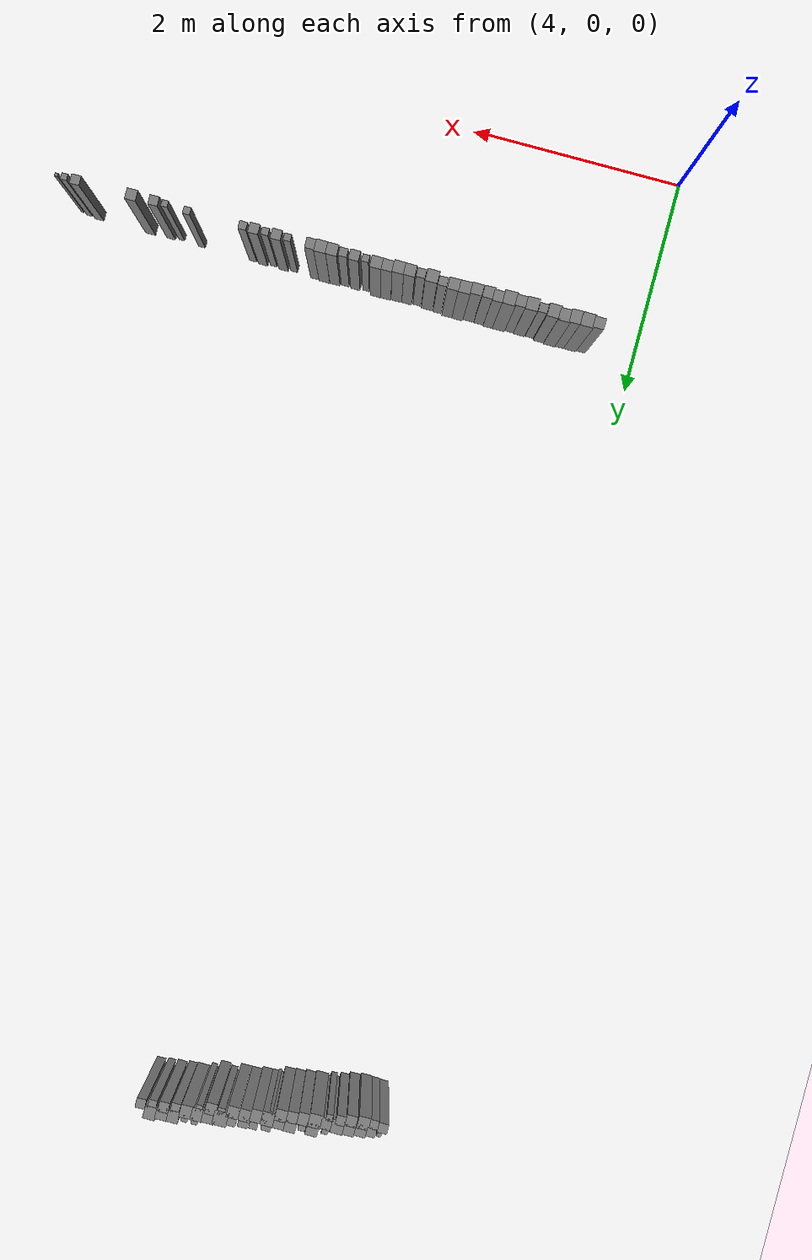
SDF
<sdf version="1.6">
 <world name="default">
  <model name="group_0">
   <pose>4.52 8.91 0.5 0 0 0</pose>
   <static>true</static>
   <link name="link">
    <collision name="collision">
     <geometry><box><size>0.08740686806820892 0.08740686806820892 1</size></box></geometry>
    </collision>
    <visual name="visual">
     <geometry><box><size>0.08740686806820892 0.08740686806820892 1</size></box></geometry>
     <material><ambient>0.5 0.5 0.5 1</ambient></material>
    </visual>
   </link>
  </model>
  <model name="group_1">
   <pose>4.54 8.97 0.5 0 0 0</pose>
   <static>true</static>
   <link name="link">
    <collision name="collision">
     <geometry><box><size>0.039435040914736375 0.039435040914736375 1</size></box></geometry>
    </collision>
    <visual name="visual">
     <geometry><box><size>0.039435040914736375 0.039435040914736375 1</size></box></geometry>
     <material><ambient>0.5 0.5 0.5 1</ambient></material>
    </visual>
   </link>
  </model>
  <model name="group_2">
   <pose>4.60 8.90 0.5 0 0 0</pose>
   <static>true</static>
   <link name="link">
    <collision name="collision">
     <geometry><box><size>0.07960863723841033 0.07960863723841033 1</size></box></geometry>
    </collision>
    <visual name="visual">
     <geometry><box><size>0.07960863723841033 0.07960863723841033 1</size></box></geometry>
     <material><ambient>0.5 0.5 0.5 1</ambient></material>
    </visual>
   </link>
  </model>
  <model name="group_3">
   <pose>4.61 8.97 0.5 0 0 0</pose>
   <static>true</static>
   <link name="link">
    <collision name="collision">
     <geometry><box><size>0.08105785199989857 0.08105785199989857 1</size></box></geometry>
    </collision>
    <visual name="visual">
     <geometry><box><size>0.08105785199989857 0.08105785199989857 1</size></box></geometry>
     <material><ambient>0.5 0.5 0.5 1</ambient></material>
    </visual>
   </link>
  </model>
  <model name="group_4">
   <pose>4.69 8.91 0.5 0 0 0</pose>
   <static>true</static>
   <link name="link">
    <collision name="collision">
     <geometry><box><size>0.1078212749080291 0.1078212749080291 1</size></box></geometry>
    </collision>
    <visual name="visual">
     <geometry><box><size>0.1078212749080291 0.1078212749080291 1</size></box></geometry>
     <material><ambient>0.5 0.5 0.5 1</ambient></material>
    </visual>
   </link>
  </model>
  <model name="group_5">
   <pose>4.70 8.98 0.5 0 0 0</pose>
   <static>true</static>
   <link name="link">
    <collision name="collision">
     <geometry><box><size>0.10297681291020339 0.10297681291020339 1</size></box></geometry>
    </collision>
    <visual name="visual">
     <geometry><box><size>0.10297681291020339 0.10297681291020339 1</size></box></geometry>
     <material><ambient>0.5 0.5 0.5 1</ambient></material>
    </visual>
   </link>
  </model>
  <model name="group_6">
   <pose>4.80 8.92 0.5 0 0 0</pose>
   <static>true</static>
   <link name="link">
    <collision name="collision">
     <geometry><box><size>0.0965730022409278 0.0965730022409278 1</size></box></geometry>
    </collision>
    <visual name="visual">
     <geometry><box><size>0.0965730022409278 0.0965730022409278 1</size></box></geometry>
     <material><ambient>0.5 0.5 0.5 1</ambient></material>
    </visual>
   </link>
  </model>
  <model name="group_7">
   <pose>4.80 9.00 0.5 0 0 0</pose>
   <static>true</static>
   <link name="link">
    <collision name="collision">
     <geometry><box><size>0.0991922640656726 0.0991922640656726 1</size></box></geometry>
    </collision>
    <visual name="visual">
     <geometry><box><size>0.0991922640656726 0.0991922640656726 1</size></box></geometry>
     <material><ambient>0.5 0.5 0.5 1</ambient></material>
    </visual>
   </link>
  </model>
  <model name="group_8">
   <pose>4.89 8.94 0.5 0 0 0</pose>
   <static>true</static>
   <link name="link">
    <collision name="collision">
     <geometry><box><size>0.08442075767464065 0.08442075767464065 1</size></box></geometry>
    </collision>
    <visual name="visual">
     <geometry><box><size>0.08442075767464065 0.08442075767464065 1</size></box></geometry>
     <material><ambient>0.5 0.5 0.5 1</ambient></material>
    </visual>
   </link>
  </model>
  <model name="group_9">
   <pose>4.90 9.00 0.5 0 0 0</pose>
   <static>true</static>
   <link name="link">
    <collision name="collision">
     <geometry><box><size>0.11941295585761501 0.11941295585761501 1</size></box></geometry>
    </collision>
    <visual name="visual">
     <geometry><box><size>0.11941295585761501 0.11941295585761501 1</size></box></geometry>
     <material><ambient>0.5 0.5 0.5 1</ambient></material>
    </visual>
   </link>
  </model>
  <model name="group_10">
   <pose>4.95 9.06 0.5 0 0 0</pose>
   <static>true</static>
   <link name="link">
    <collision name="collision"><geometry><box><size>0.0 0.0 1</size></box></geometry></collision>
    <visual name="visual">
     <geometry><box><size>0.0 0.0 1</size></box></geometry>
     <material><ambient>0.5 0.5 0.5 1</ambient></material>
    </visual>
   </link>
  </model>
  <model name="group_11">
   <pose>4.99 8.94 0.5 0 0 0</pose>
   <static>true</static>
   <link name="link">
    <collision name="collision">
     <geometry><box><size>0.0562805051164271 0.0562805051164271 1</size></box></geometry>
    </collision>
    <visual name="visual">
     <geometry><box><size>0.0562805051164271 0.0562805051164271 1</size></box></geometry>
     <material><ambient>0.5 0.5 0.5 1</ambient></material>
    </visual>
   </link>
  </model>
  <model name="group_12">
   <pose>5.00 9.00 0.5 0 0 0</pose>
   <static>true</static>
   <link name="link">
    <collision name="collision">
     <geometry><box><size>0.09919226406566871 0.09919226406566871 1</size></box></geometry>
    </collision>
    <visual name="visual">
     <geometry><box><size>0.09919226406566871 0.09919226406566871 1</size></box></geometry>
     <material><ambient>0.5 0.5 0.5 1</ambient></material>
    </visual>
   </link>
  </model>
  <model name="group_13">
   <pose>5.00 9.06 0.5 0 0 0</pose>
   <static>true</static>
   <link name="link">
    <collision name="collision">
     <geometry><box><size>0.0562805051164271 0.0562805051164271 1</size></box></geometry>
    </collision>
    <visual name="visual">
     <geometry><box><size>0.0562805051164271 0.0562805051164271 1</size></box></geometry>
     <material><ambient>0.5 0.5 0.5 1</ambient></material>
    </visual>
   </link>
  </model>
  <model name="group_15">
   <pose>4.50 1.70 0.5 0 0 0</pose>
   <static>true</static>
   <link name="link">
    <collision name="collision">
     <geometry><box><size>0.09919226406566767 0.09919226406566767 1</size></box></geometry>
    </collision>
    <visual name="visual">
     <geometry><box><size>0.09919226406566767 0.09919226406566767 1</size></box></geometry>
     <material><ambient>0.5 0.5 0.5 1</ambient></material>
    </visual>
   </link>
  </model>
  <model name="group_16">
   <pose>5.10 9.00 0.5 0 0 0</pose>
   <static>true</static>
   <link name="link">
    <collision name="collision">
     <geometry><box><size>0.11941295585761501 0.11941295585761501 1</size></box></geometry>
    </collision>
    <visual name="visual">
     <geometry><box><size>0.11941295585761501 0.11941295585761501 1</size></box></geometry>
     <material><ambient>0.5 0.5 0.5 1</ambient></material>
    </visual>
   </link>
  </model>
  <model name="group_17">
   <pose>5.11 9.08 0.5 0 0 0</pose>
   <static>true</static>
   <link name="link">
    <collision name="collision">
     <geometry><box><size>0.10632897044420285 0.10632897044420285 1</size></box></geometry>
    </collision>
    <visual name="visual">
     <geometry><box><size>0.10632897044420285 0.10632897044420285 1</size></box></geometry>
     <material><ambient>0.5 0.5 0.5 1</ambient></material>
    </visual>
   </link>
  </model>
  <model name="group_18">
   <pose>4.60 1.70 0.5 0 0 0</pose>
   <static>true</static>
   <link name="link">
    <collision name="collision">
     <geometry><box><size>0.11941295585761413 0.11941295585761413 1</size></box></geometry>
    </collision>
    <visual name="visual">
     <geometry><box><size>0.11941295585761413 0.11941295585761413 1</size></box></geometry>
     <material><ambient>0.5 0.5 0.5 1</ambient></material>
    </visual>
   </link>
  </model>
  <model name="group_20">
   <pose>5.20 9.01 0.5 0 0 0</pose>
   <static>true</static>
   <link name="link">
    <collision name="collision">
     <geometry><box><size>0.10871288083971324 0.10871288083971324 1</size></box></geometry>
    </collision>
    <visual name="visual">
     <geometry><box><size>0.10871288083971324 0.10871288083971324 1</size></box></geometry>
     <material><ambient>0.5 0.5 0.5 1</ambient></material>
    </visual>
   </link>
  </model>
  <model name="group_21">
   <pose>5.20 9.08 0.5 0 0 0</pose>
   <static>true</static>
   <link name="link">
    <collision name="collision">
     <geometry><box><size>0.06413786030771819 0.06413786030771819 1</size></box></geometry>
    </collision>
    <visual name="visual">
     <geometry><box><size>0.06413786030771819 0.06413786030771819 1</size></box></geometry>
     <material><ambient>0.5 0.5 0.5 1</ambient></material>
    </visual>
   </link>
  </model>
  <model name="group_23">
   <pose>4.70 1.70 0.5 0 0 0</pose>
   <static>true</static>
   <link name="link">
    <collision name="collision">
     <geometry><box><size>0.11884310777185463 0.11884310777185463 1</size></box></geometry>
    </collision>
    <visual name="visual">
     <geometry><box><size>0.11884310777185463 0.11884310777185463 1</size></box></geometry>
     <material><ambient>0.5 0.5 0.5 1</ambient></material>
    </visual>
   </link>
  </model>
  <model name="group_24">
   <pose>5.30 9.02 0.5 0 0 0</pose>
   <static>true</static>
   <link name="link">
    <collision name="collision">
     <geometry><box><size>0.0983825120287442 0.0983825120287442 1</size></box></geometry>
    </collision>
    <visual name="visual">
     <geometry><box><size>0.0983825120287442 0.0983825120287442 1</size></box></geometry>
     <material><ambient>0.5 0.5 0.5 1</ambient></material>
    </visual>
   </link>
  </model>
  <model name="group_25">
   <pose>5.30 9.10 0.5 0 0 0</pose>
   <static>true</static>
   <link name="link">
    <collision name="collision">
     <geometry><box><size>0.10297681291020155 0.10297681291020155 1</size></box></geometry>
    </collision>
    <visual name="visual">
     <geometry><box><size>0.10297681291020155 0.10297681291020155 1</size></box></geometry>
     <material><ambient>0.5 0.5 0.5 1</ambient></material>
    </visual>
   </link>
  </model>
  <model name="group_26">
   <pose>4.80 1.71 0.5 0 0 0</pose>
   <static>true</static>
   <link name="link">
    <collision name="collision">
     <geometry><box><size>0.11145209213377275 0.11145209213377275 1</size></box></geometry>
    </collision>
    <visual name="visual">
     <geometry><box><size>0.11145209213377275 0.11145209213377275 1</size></box></geometry>
     <material><ambient>0.5 0.5 0.5 1</ambient></material>
    </visual>
   </link>
  </model>
  <model name="group_28">
   <pose>5.40 9.03 0.5 0 0 0</pose>
   <static>true</static>
   <link name="link">
    <collision name="collision">
     <geometry><box><size>0.10273569860668266 0.10273569860668266 1</size></box></geometry>
    </collision>
    <visual name="visual">
     <geometry><box><size>0.10273569860668266 0.10273569860668266 1</size></box></geometry>
     <material><ambient>0.5 0.5 0.5 1</ambient></material>
    </visual>
   </link>
  </model>
  <model name="group_29">
   <pose>5.40 9.10 0.5 0 0 0</pose>
   <static>true</static>
   <link name="link">
    <collision name="collision">
     <geometry><box><size>0.099244404533285 0.099244404533285 1</size></box></geometry>
    </collision>
    <visual name="visual">
     <geometry><box><size>0.099244404533285 0.099244404533285 1</size></box></geometry>
     <material><ambient>0.5 0.5 0.5 1</ambient></material>
    </visual>
   </link>
  </model>
  <model name="group_30">
   <pose>5.43 9.15 0.5 0 0 0</pose>
   <static>true</static>
   <link name="link">
    <collision name="collision"><geometry><box><size>0.0 0.0 1</size></box></geometry></collision>
    <visual name="visual">
     <geometry><box><size>0.0 0.0 1</size></box></geometry>
     <material><ambient>0.5 0.5 0.5 1</ambient></material>
    </visual>
   </link>
  </model>
  <model name="group_32">
   <pose>4.90 1.70 0.5 0 0 0</pose>
   <static>true</static>
   <link name="link">
    <collision name="collision">
     <geometry><box><size>0.11493900367022299 0.11493900367022299 1</size></box></geometry>
    </collision>
    <visual name="visual">
     <geometry><box><size>0.11493900367022299 0.11493900367022299 1</size></box></geometry>
     <material><ambient>0.5 0.5 0.5 1</ambient></material>
    </visual>
   </link>
  </model>
  <model name="group_33">
   <pose>5.50 9.09 0.5 0 0 0</pose>
   <static>true</static>
   <link name="link">
    <collision name="collision">
     <geometry><box><size>0.11941295585761268 0.11941295585761268 1</size></box></geometry>
    </collision>
    <visual name="visual">
     <geometry><box><size>0.11941295585761268 0.11941295585761268 1</size></box></geometry>
     <material><ambient>0.5 0.5 0.5 1</ambient></material>
    </visual>
   </link>
  </model>
  <model name="group_34">
   <pose>5.50 9.15 0.5 0 0 0</pose>
   <static>true</static>
   <link name="link">
    <collision name="collision">
     <geometry><box><size>0.08442075767464065 0.08442075767464065 1</size></box></geometry>
    </collision>
    <visual name="visual">
     <geometry><box><size>0.08442075767464065 0.08442075767464065 1</size></box></geometry>
     <material><ambient>0.5 0.5 0.5 1</ambient></material>
    </visual>
   </link>
  </model>
  <model name="group_35">
   <pose>5.49 9.03 0.5 0 0 0</pose>
   <static>true</static>
   <link name="link">
    <collision name="collision">
     <geometry><box><size>0.02814025255821355 0.02814025255821355 1</size></box></geometry>
    </collision>
    <visual name="visual">
     <geometry><box><size>0.02814025255821355 0.02814025255821355 1</size></box></geometry>
     <material><ambient>0.5 0.5 0.5 1</ambient></material>
    </visual>
   </link>
  </model>
  <model name="group_37">
   <pose>5.00 1.70 0.5 0 0 0</pose>
   <static>true</static>
   <link name="link">
    <collision name="collision">
     <geometry><box><size>0.07960863723840993 0.07960863723840993 1</size></box></geometry>
    </collision>
    <visual name="visual">
     <geometry><box><size>0.07960863723840993 0.07960863723840993 1</size></box></geometry>
     <material><ambient>0.5 0.5 0.5 1</ambient></material>
    </visual>
   </link>
  </model>
  <model name="group_38">
   <pose>5.60 9.09 0.5 0 0 0</pose>
   <static>true</static>
   <link name="link">
    <collision name="collision">
     <geometry><box><size>0.11218382099302728 0.11218382099302728 1</size></box></geometry>
    </collision>
    <visual name="visual">
     <geometry><box><size>0.11218382099302728 0.11218382099302728 1</size></box></geometry>
     <material><ambient>0.5 0.5 0.5 1</ambient></material>
    </visual>
   </link>
  </model>
  <model name="group_39">
   <pose>5.61 9.17 0.5 0 0 0</pose>
   <static>true</static>
   <link name="link">
    <collision name="collision">
     <geometry><box><size>0.07256090009164153 0.07256090009164153 1</size></box></geometry>
    </collision>
    <visual name="visual">
     <geometry><box><size>0.07256090009164153 0.07256090009164153 1</size></box></geometry>
     <material><ambient>0.5 0.5 0.5 1</ambient></material>
    </visual>
   </link>
  </model>
  <model name="group_41">
   <pose>5.10 1.69 0.5 0 0 0</pose>
   <static>true</static>
   <link name="link">
    <collision name="collision">
     <geometry><box><size>0.11145209213377198 0.11145209213377198 1</size></box></geometry>
    </collision>
    <visual name="visual">
     <geometry><box><size>0.11145209213377198 0.11145209213377198 1</size></box></geometry>
     <material><ambient>0.5 0.5 0.5 1</ambient></material>
    </visual>
   </link>
  </model>
  <model name="group_42">
   <pose>5.70 9.11 0.5 0 0 0</pose>
   <static>true</static>
   <link name="link">
    <collision name="collision">
     <geometry><box><size>0.10560575864695261 0.10560575864695261 1</size></box></geometry>
    </collision>
    <visual name="visual">
     <geometry><box><size>0.10560575864695261 0.10560575864695261 1</size></box></geometry>
     <material><ambient>0.5 0.5 0.5 1</ambient></material>
    </visual>
   </link>
  </model>
  <model name="group_43">
   <pose>5.70 9.17 0.5 0 0 0</pose>
   <static>true</static>
   <link name="link">
    <collision name="collision">
     <geometry><box><size>0.09070112511455292 0.09070112511455292 1</size></box></geometry>
    </collision>
    <visual name="visual">
     <geometry><box><size>0.09070112511455292 0.09070112511455292 1</size></box></geometry>
     <material><ambient>0.5 0.5 0.5 1</ambient></material>
    </visual>
   </link>
  </model>
  <model name="group_45">
   <pose>5.20 1.69 0.5 0 0 0</pose>
   <static>true</static>
   <link name="link">
    <collision name="collision">
     <geometry><box><size>0.09919226406566733 0.09919226406566733 1</size></box></geometry>
    </collision>
    <visual name="visual">
     <geometry><box><size>0.09919226406566733 0.09919226406566733 1</size></box></geometry>
     <material><ambient>0.5 0.5 0.5 1</ambient></material>
    </visual>
   </link>
  </model>
  <model name="group_46">
   <pose>5.81 9.11 0.5 0 0 0</pose>
   <static>true</static>
   <link name="link">
    <collision name="collision">
     <geometry><box><size>0.10297681291020186 0.10297681291020186 1</size></box></geometry>
    </collision>
    <visual name="visual">
     <geometry><box><size>0.10297681291020186 0.10297681291020186 1</size></box></geometry>
     <material><ambient>0.5 0.5 0.5 1</ambient></material>
    </visual>
   </link>
  </model>
  <model name="group_47">
   <pose>5.80 9.19 0.5 0 0 0</pose>
   <static>true</static>
   <link name="link">
    <collision name="collision">
     <geometry><box><size>0.07960863723840801 0.07960863723840801 1</size></box></geometry>
    </collision>
    <visual name="visual">
     <geometry><box><size>0.07960863723840801 0.07960863723840801 1</size></box></geometry>
     <material><ambient>0.5 0.5 0.5 1</ambient></material>
    </visual>
   </link>
  </model>
  <model name="group_49">
   <pose>5.30 1.69 0.5 0 0 0</pose>
   <static>true</static>
   <link name="link">
    <collision name="collision">
     <geometry><box><size>0.11941295585761355 0.11941295585761355 1</size></box></geometry>
    </collision>
    <visual name="visual">
     <geometry><box><size>0.11941295585761355 0.11941295585761355 1</size></box></geometry>
     <material><ambient>0.5 0.5 0.5 1</ambient></material>
    </visual>
   </link>
  </model>
  <model name="group_50">
   <pose>5.90 9.19 0.5 0 0 0</pose>
   <static>true</static>
   <link name="link">
    <collision name="collision">
     <geometry><box><size>0.12787992062458983 0.12787992062458983 1</size></box></geometry>
    </collision>
    <visual name="visual">
     <geometry><box><size>0.12787992062458983 0.12787992062458983 1</size></box></geometry>
     <material><ambient>0.5 0.5 0.5 1</ambient></material>
    </visual>
   </link>
  </model>
  <model name="group_51">
   <pose>5.91 9.13 0.5 0 0 0</pose>
   <static>true</static>
   <link name="link">
    <collision name="collision">
     <geometry><box><size>0.06413786030771819 0.06413786030771819 1</size></box></geometry>
    </collision>
    <visual name="visual">
     <geometry><box><size>0.06413786030771819 0.06413786030771819 1</size></box></geometry>
     <material><ambient>0.5 0.5 0.5 1</ambient></material>
    </visual>
   </link>
  </model>
  <model name="group_53">
   <pose>5.40 1.70 0.5 0 0 0</pose>
   <static>true</static>
   <link name="link">
    <collision name="collision">
     <geometry><box><size>0.09919226406566879 0.09919226406566879 1</size></box></geometry>
    </collision>
    <visual name="visual">
     <geometry><box><size>0.09919226406566879 0.09919226406566879 1</size></box></geometry>
     <material><ambient>0.5 0.5 0.5 1</ambient></material>
    </visual>
   </link>
  </model>
  <model name="group_54">
   <pose>6.00 9.13 0.5 0 0 0</pose>
   <static>true</static>
   <link name="link">
    <collision name="collision">
     <geometry><box><size>0.10114093471775669 0.10114093471775669 1</size></box></geometry>
    </collision>
    <visual name="visual">
     <geometry><box><size>0.10114093471775669 0.10114093471775669 1</size></box></geometry>
     <material><ambient>0.5 0.5 0.5 1</ambient></material>
    </visual>
   </link>
  </model>
  <model name="group_55">
   <pose>6.00 9.20 0.5 0 0 0</pose>
   <static>true</static>
   <link name="link">
    <collision name="collision">
     <geometry><box><size>0.11884310777185265 0.11884310777185265 1</size></box></geometry>
    </collision>
    <visual name="visual">
     <geometry><box><size>0.11884310777185265 0.11884310777185265 1</size></box></geometry>
     <material><ambient>0.5 0.5 0.5 1</ambient></material>
    </visual>
   </link>
  </model>
  <model name="group_56">
   <pose>5.49 1.69 0.5 0 0 0</pose>
   <static>true</static>
   <link name="link">
    <collision name="collision">
     <geometry><box><size>0.1029768129102043 0.1029768129102043 1</size></box></geometry>
    </collision>
    <visual name="visual">
     <geometry><box><size>0.1029768129102043 0.1029768129102043 1</size></box></geometry>
     <material><ambient>0.5 0.5 0.5 1</ambient></material>
    </visual>
   </link>
  </model>
  <model name="group_57">
   <pose>6.10 9.21 0.5 0 0 0</pose>
   <static>true</static>
   <link name="link">
    <collision name="collision">
     <geometry><box><size>0.11145209213377275 0.11145209213377275 1</size></box></geometry>
    </collision>
    <visual name="visual">
     <geometry><box><size>0.11145209213377275 0.11145209213377275 1</size></box></geometry>
     <material><ambient>0.5 0.5 0.5 1</ambient></material>
    </visual>
   </link>
  </model>
  <model name="group_59">
   <pose>6.10 9.15 0.5 0 0 0</pose>
   <static>true</static>
   <link name="link">
    <collision name="collision">
     <geometry><box><size>0.0562805051164271 0.0562805051164271 1</size></box></geometry>
    </collision>
    <visual name="visual">
     <geometry><box><size>0.0562805051164271 0.0562805051164271 1</size></box></geometry>
     <material><ambient>0.5 0.5 0.5 1</ambient></material>
    </visual>
   </link>
  </model>
  <model name="group_60">
   <pose>6.11 9.27 0.5 0 0 0</pose>
   <static>true</static>
   <link name="link">
    <collision name="collision">
     <geometry><box><size>0.056280505116427 0.056280505116427 1</size></box></geometry>
    </collision>
    <visual name="visual">
     <geometry><box><size>0.056280505116427 0.056280505116427 1</size></box></geometry>
     <material><ambient>0.5 0.5 0.5 1</ambient></material>
    </visual>
   </link>
  </model>
  <model name="group_62">
   <pose>5.60 1.69 0.5 0 0 0</pose>
   <static>true</static>
   <link name="link">
    <collision name="collision">
     <geometry><box><size>0.09838251202874382 0.09838251202874382 1</size></box></geometry>
    </collision>
    <visual name="visual">
     <geometry><box><size>0.09838251202874382 0.09838251202874382 1</size></box></geometry>
     <material><ambient>0.5 0.5 0.5 1</ambient></material>
    </visual>
   </link>
  </model>
  <model name="group_63">
   <pose>6.16 9.15 0.5 0 0 0</pose>
   <static>true</static>
   <link name="link">
    <collision name="collision"><geometry><box><size>0.0 0.0 1</size></box></geometry></collision>
    <visual name="visual">
     <geometry><box><size>0.0 0.0 1</size></box></geometry>
     <material><ambient>0.5 0.5 0.5 1</ambient></material>
    </visual>
   </link>
  </model>
  <model name="group_64">
   <pose>6.20 9.21 0.5 0 0 0</pose>
   <static>true</static>
   <link name="link">
    <collision name="collision">
     <geometry><box><size>0.1114520921337714 0.1114520921337714 1</size></box></geometry>
    </collision>
    <visual name="visual">
     <geometry><box><size>0.1114520921337714 0.1114520921337714 1</size></box></geometry>
     <material><ambient>0.5 0.5 0.5 1</ambient></material>
    </visual>
   </link>
  </model>
  <model name="group_65">
   <pose>6.20 9.27 0.5 0 0 0</pose>
   <static>true</static>
   <link name="link">
    <collision name="collision">
     <geometry><box><size>0.0562805051164271 0.0562805051164271 1</size></box></geometry>
    </collision>
    <visual name="visual">
     <geometry><box><size>0.0562805051164271 0.0562805051164271 1</size></box></geometry>
     <material><ambient>0.5 0.5 0.5 1</ambient></material>
    </visual>
   </link>
  </model>
  <model name="group_66">
   <pose>5.70 1.70 0.5 0 0 0</pose>
   <static>true</static>
   <link name="link">
    <collision name="collision">
     <geometry><box><size>0.10647461046978544 0.10647461046978544 1</size></box></geometry>
    </collision>
    <visual name="visual">
     <geometry><box><size>0.10647461046978544 0.10647461046978544 1</size></box></geometry>
     <material><ambient>0.5 0.5 0.5 1</ambient></material>
    </visual>
   </link>
  </model>
  <model name="group_67">
   <pose>6.30 9.28 0.5 0 0 0</pose>
   <static>true</static>
   <link name="link">
    <collision name="collision">
     <geometry><box><size>0.1029768129102052 0.1029768129102052 1</size></box></geometry>
    </collision>
    <visual name="visual">
     <geometry><box><size>0.1029768129102052 0.1029768129102052 1</size></box></geometry>
     <material><ambient>0.5 0.5 0.5 1</ambient></material>
    </visual>
   </link>
  </model>
  <model name="group_69">
   <pose>6.30 9.20 0.5 0 0 0</pose>
   <static>true</static>
   <link name="link">
    <collision name="collision">
     <geometry><box><size>0.07960863723841265 0.07960863723841265 1</size></box></geometry>
    </collision>
    <visual name="visual">
     <geometry><box><size>0.07960863723841265 0.07960863723841265 1</size></box></geometry>
     <material><ambient>0.5 0.5 0.5 1</ambient></material>
    </visual>
   </link>
  </model>
  <model name="group_71">
   <pose>5.80 1.70 0.5 0 0 0</pose>
   <static>true</static>
   <link name="link">
    <collision name="collision">
     <geometry><box><size>0.10297681291020339 0.10297681291020339 1</size></box></geometry>
    </collision>
    <visual name="visual">
     <geometry><box><size>0.10297681291020339 0.10297681291020339 1</size></box></geometry>
     <material><ambient>0.5 0.5 0.5 1</ambient></material>
    </visual>
   </link>
  </model>
  <model name="group_72">
   <pose>6.40 9.22 0.5 0 0 0</pose>
   <static>true</static>
   <link name="link">
    <collision name="collision">
     <geometry><box><size>0.0907011251145523 0.0907011251145523 1</size></box></geometry>
    </collision>
    <visual name="visual">
     <geometry><box><size>0.0907011251145523 0.0907011251145523 1</size></box></geometry>
     <material><ambient>0.5 0.5 0.5 1</ambient></material>
    </visual>
   </link>
  </model>
  <model name="group_73">
   <pose>6.40 9.28 0.5 0 0 0</pose>
   <static>true</static>
   <link name="link">
    <collision name="collision">
     <geometry><box><size>0.10882204233582819 0.10882204233582819 1</size></box></geometry>
    </collision>
    <visual name="visual">
     <geometry><box><size>0.10882204233582819 0.10882204233582819 1</size></box></geometry>
     <material><ambient>0.5 0.5 0.5 1</ambient></material>
    </visual>
   </link>
  </model>
  <model name="group_74">
   <pose>6.50 9.30 0.5 0 0 0</pose>
   <static>true</static>
   <link name="link">
    <collision name="collision">
     <geometry><box><size>0.11145209213377275 0.11145209213377275 1</size></box></geometry>
    </collision>
    <visual name="visual">
     <geometry><box><size>0.11145209213377275 0.11145209213377275 1</size></box></geometry>
     <material><ambient>0.5 0.5 0.5 1</ambient></material>
    </visual>
   </link>
  </model>
  <model name="group_76">
   <pose>5.90 1.70 0.5 0 0 0</pose>
   <static>true</static>
   <link name="link">
    <collision name="collision">
     <geometry><box><size>0.07960863723840916 0.07960863723840916 1</size></box></geometry>
    </collision>
    <visual name="visual">
     <geometry><box><size>0.07960863723840916 0.07960863723840916 1</size></box></geometry>
     <material><ambient>0.5 0.5 0.5 1</ambient></material>
    </visual>
   </link>
  </model>
  <model name="group_77">
   <pose>6.50 9.22 0.5 0 0 0</pose>
   <static>true</static>
   <link name="link">
    <collision name="collision">
     <geometry><box><size>0.07256090009164153 0.07256090009164153 1</size></box></geometry>
    </collision>
    <visual name="visual">
     <geometry><box><size>0.07256090009164153 0.07256090009164153 1</size></box></geometry>
     <material><ambient>0.5 0.5 0.5 1</ambient></material>
    </visual>
   </link>
  </model>
  <model name="group_79">
   <pose>6.00 1.68 0.5 0 0 0</pose>
   <static>true</static>
   <link name="link">
    <collision name="collision">
     <geometry><box><size>0.10915025861500259 0.10915025861500259 1</size></box></geometry>
    </collision>
    <visual name="visual">
     <geometry><box><size>0.10915025861500259 0.10915025861500259 1</size></box></geometry>
     <material><ambient>0.5 0.5 0.5 1</ambient></material>
    </visual>
   </link>
  </model>
  <model name="group_80">
   <pose>6.60 9.24 0.5 0 0 0</pose>
   <static>true</static>
   <link name="link">
    <collision name="collision">
     <geometry><box><size>0.08442075767464222 0.08442075767464222 1</size></box></geometry>
    </collision>
    <visual name="visual">
     <geometry><box><size>0.08442075767464222 0.08442075767464222 1</size></box></geometry>
     <material><ambient>0.5 0.5 0.5 1</ambient></material>
    </visual>
   </link>
  </model>
  <model name="group_86">
   <pose>6.10 1.68 0.5 0 0 0</pose>
   <static>true</static>
   <link name="link">
    <collision name="collision">
     <geometry><box><size>0.07960863723840993 0.07960863723840993 1</size></box></geometry>
    </collision>
    <visual name="visual">
     <geometry><box><size>0.07960863723840993 0.07960863723840993 1</size></box></geometry>
     <material><ambient>0.5 0.5 0.5 1</ambient></material>
    </visual>
   </link>
  </model>
  <model name="group_87">
   <pose>6.67 9.24 0.5 0 0 0</pose>
   <static>true</static>
   <link name="link">
    <collision name="collision"><geometry><box><size>0.0 0.0 1</size></box></geometry></collision>
    <visual name="visual">
     <geometry><box><size>0.0 0.0 1</size></box></geometry>
     <material><ambient>0.5 0.5 0.5 1</ambient></material>
    </visual>
   </link>
  </model>
  <model name="group_88">
   <pose>6.20 1.68 0.5 0 0 0</pose>
   <static>true</static>
   <link name="link">
    <collision name="collision">
     <geometry><box><size>0.10297681291020278 0.10297681291020278 1</size></box></geometry>
    </collision>
    <visual name="visual">
     <geometry><box><size>0.10297681291020278 0.10297681291020278 1</size></box></geometry>
     <material><ambient>0.5 0.5 0.5 1</ambient></material>
    </visual>
   </link>
  </model>
  <model name="group_94">
   <pose>6.30 1.68 0.5 0 0 0</pose>
   <static>true</static>
   <link name="link">
    <collision name="collision">
     <geometry><box><size>0.10647461046978292 0.10647461046978292 1</size></box></geometry>
    </collision>
    <visual name="visual">
     <geometry><box><size>0.10647461046978292 0.10647461046978292 1</size></box></geometry>
     <material><ambient>0.5 0.5 0.5 1</ambient></material>
    </visual>
   </link>
  </model>
  <model name="group_96">
   <pose>6.40 1.69 0.5 0 0 0</pose>
   <static>true</static>
   <link name="link">
    <collision name="collision">
     <geometry><box><size>0.0983825120287432 0.0983825120287432 1</size></box></geometry>
    </collision>
    <visual name="visual">
     <geometry><box><size>0.0983825120287432 0.0983825120287432 1</size></box></geometry>
     <material><ambient>0.5 0.5 0.5 1</ambient></material>
    </visual>
   </link>
  </model>
  <model name="group_102">
   <pose>6.50 1.69 0.5 0 0 0</pose>
   <static>true</static>
   <link name="link">
    <collision name="collision">
     <geometry><box><size>0.10297681291020491 0.10297681291020491 1</size></box></geometry>
    </collision>
    <visual name="visual">
     <geometry><box><size>0.10297681291020491 0.10297681291020491 1</size></box></geometry>
     <material><ambient>0.5 0.5 0.5 1</ambient></material>
    </visual>
   </link>
  </model>
  <model name="group_109">
   <pose>6.60 1.68 0.5 0 0 0</pose>
   <static>true</static>
   <link name="link">
    <collision name="collision">
     <geometry><box><size>0.06413786030771801 0.06413786030771801 1</size></box></geometry>
    </collision>
    <visual name="visual">
     <geometry><box><size>0.06413786030771801 0.06413786030771801 1</size></box></geometry>
     <material><ambient>0.5 0.5 0.5 1</ambient></material>
    </visual>
   </link>
  </model>
  <model name="group_112">
   <pose>6.70 1.68 0.5 0 0 0</pose>
   <static>true</static>
   <link name="link">
    <collision name="collision">
     <geometry><box><size>0.09070112511455217 0.09070112511455217 1</size></box></geometry>
    </collision>
    <visual name="visual">
     <geometry><box><size>0.09070112511455217 0.09070112511455217 1</size></box></geometry>
     <material><ambient>0.5 0.5 0.5 1</ambient></material>
    </visual>
   </link>
  </model>
  <model name="group_117">
   <pose>6.80 1.68 0.5 0 0 0</pose>
   <static>true</static>
   <link name="link">
    <collision name="collision">
     <geometry><box><size>0.0766421197349749 0.0766421197349749 1</size></box></geometry>
    </collision>
    <visual name="visual">
     <geometry><box><size>0.0766421197349749 0.0766421197349749 1</size></box></geometry>
     <material><ambient>0.5 0.5 0.5 1</ambient></material>
    </visual>
   </link>
  </model>
  <model name="group_120">
   <pose>6.90 1.68 0.5 0 0 0</pose>
   <static>true</static>
   <link name="link">
    <collision name="collision">
     <geometry><box><size>0.10297681291020423 0.10297681291020423 1</size></box></geometry>
    </collision>
    <visual name="visual">
     <geometry><box><size>0.10297681291020423 0.10297681291020423 1</size></box></geometry>
     <material><ambient>0.5 0.5 0.5 1</ambient></material>
    </visual>
   </link>
  </model>
  <model name="group_125">
   <pose>7.00 1.68 0.5 0 0 0</pose>
   <static>true</static>
   <link name="link">
    <collision name="collision">
     <geometry><box><size>0.10647461046978166 0.10647461046978166 1</size></box></geometry>
    </collision>
    <visual name="visual">
     <geometry><box><size>0.10647461046978166 0.10647461046978166 1</size></box></geometry>
     <material><ambient>0.5 0.5 0.5 1</ambient></material>
    </visual>
   </link>
  </model>
  <model name="group_127">
   <pose>7.09 1.68 0.5 0 0 0</pose>
   <static>true</static>
   <link name="link">
    <collision name="collision">
     <geometry><box><size>0.0935965019283684 0.0935965019283684 1</size></box></geometry>
    </collision>
    <visual name="visual">
     <geometry><box><size>0.0935965019283684 0.0935965019283684 1</size></box></geometry>
     <material><ambient>0.5 0.5 0.5 1</ambient></material>
    </visual>
   </link>
  </model>
  <model name="group_139">
   <pose>7.30 1.68 0.5 0 0 0</pose>
   <static>true</static>
   <link name="link">
    <collision name="collision">
     <geometry><box><size>0.06413786030772087 0.06413786030772087 1</size></box></geometry>
    </collision>
    <visual name="visual">
     <geometry><box><size>0.06413786030772087 0.06413786030772087 1</size></box></geometry>
     <material><ambient>0.5 0.5 0.5 1</ambient></material>
    </visual>
   </link>
  </model>
  <model name="group_143">
   <pose>7.40 1.68 0.5 0 0 0</pose>
   <static>true</static>
   <link name="link">
    <collision name="collision">
     <geometry><box><size>0.09070112511455176 0.09070112511455176 1</size></box></geometry>
    </collision>
    <visual name="visual">
     <geometry><box><size>0.09070112511455176 0.09070112511455176 1</size></box></geometry>
     <material><ambient>0.5 0.5 0.5 1</ambient></material>
    </visual>
   </link>
  </model>
  <model name="group_147">
   <pose>7.50 1.68 0.5 0 0 0</pose>
   <static>true</static>
   <link name="link">
    <collision name="collision">
     <geometry><box><size>0.06413786030771838 0.06413786030771838 1</size></box></geometry>
    </collision>
    <visual name="visual">
     <geometry><box><size>0.06413786030771838 0.06413786030771838 1</size></box></geometry>
     <material><ambient>0.5 0.5 0.5 1</ambient></material>
    </visual>
   </link>
  </model>
  <model name="group_151">
   <pose>7.60 1.68 0.5 0 0 0</pose>
   <static>true</static>
   <link name="link">
    <collision name="collision">
     <geometry><box><size>0.09070112511455203 0.09070112511455203 1</size></box></geometry>
    </collision>
    <visual name="visual">
     <geometry><box><size>0.09070112511455203 0.09070112511455203 1</size></box></geometry>
     <material><ambient>0.5 0.5 0.5 1</ambient></material>
    </visual>
   </link>
  </model>
  <model name="group_157">
   <pose>7.70 1.68 0.5 0 0 0</pose>
   <static>true</static>
   <link name="link">
    <collision name="collision">
     <geometry><box><size>0.07147206382225652 0.07147206382225652 1</size></box></geometry>
    </collision>
    <visual name="visual">
     <geometry><box><size>0.07147206382225652 0.07147206382225652 1</size></box></geometry>
     <material><ambient>0.5 0.5 0.5 1</ambient></material>
    </visual>
   </link>
  </model>
  <model name="group_178">
   <pose>8.20 1.68 0.5 0 0 0</pose>
   <static>true</static>
   <link name="link">
    <collision name="collision">
     <geometry><box><size>0.06413786030771658 0.06413786030771658 1</size></box></geometry>
    </collision>
    <visual name="visual">
     <geometry><box><size>0.06413786030771658 0.06413786030771658 1</size></box></geometry>
     <material><ambient>0.5 0.5 0.5 1</ambient></material>
    </visual>
   </link>
  </model>
  <model name="group_186">
   <pose>8.40 1.67 0.5 0 0 0</pose>
   <static>true</static>
   <link name="link">
    <collision name="collision">
     <geometry><box><size>0.05628050511642709 0.05628050511642709 1</size></box></geometry>
    </collision>
    <visual name="visual">
     <geometry><box><size>0.05628050511642709 0.05628050511642709 1</size></box></geometry>
     <material><ambient>0.5 0.5 0.5 1</ambient></material>
    </visual>
   </link>
  </model>
  <model name="group_190">
   <pose>8.50 1.67 0.5 0 0 0</pose>
   <static>true</static>
   <link name="link">
    <collision name="collision">
     <geometry><box><size>0.0844207576746406 0.0844207576746406 1</size></box></geometry>
    </collision>
    <visual name="visual">
     <geometry><box><size>0.0844207576746406 0.0844207576746406 1</size></box></geometry>
     <material><ambient>0.5 0.5 0.5 1</ambient></material>
    </visual>
   </link>
  </model>
  <model name="group_197">
   <pose>8.70 1.67 0.5 0 0 0</pose>
   <static>true</static>
   <link name="link">
    <collision name="collision">
     <geometry><box><size>0.09657300224092912 0.09657300224092912 1</size></box></geometry>
    </collision>
    <visual name="visual">
     <geometry><box><size>0.09657300224092912 0.09657300224092912 1</size></box></geometry>
     <material><ambient>0.5 0.5 0.5 1</ambient></material>
    </visual>
   </link>
  </model>
  <model name="group_220">
   <pose>9.20 1.67 0.5 0 0 0</pose>
   <static>true</static>
   <link name="link">
    <collision name="collision">
     <geometry><box><size>0.08442075767464416 0.08442075767464416 1</size></box></geometry>
    </collision>
    <visual name="visual">
     <geometry><box><size>0.08442075767464416 0.08442075767464416 1</size></box></geometry>
     <material><ambient>0.5 0.5 0.5 1</ambient></material>
    </visual>
   </link>
  </model>
  <model name="group_225">
   <pose>9.30 1.67 0.5 0 0 0</pose>
   <static>true</static>
   <link name="link">
    <collision name="collision">
     <geometry><box><size>0.05628050511642709 0.05628050511642709 1</size></box></geometry>
    </collision>
    <visual name="visual">
     <geometry><box><size>0.05628050511642709 0.05628050511642709 1</size></box></geometry>
     <material><ambient>0.5 0.5 0.5 1</ambient></material>
    </visual>
   </link>
  </model>
  <model name="group_229">
   <pose>9.37 1.67 0.5 0 0 0</pose>
   <static>true</static>
   <link name="link">
    <collision name="collision">
     <geometry><box><size>0.028140252558213525 0.028140252558213525 1</size></box></geometry>
    </collision>
    <visual name="visual">
     <geometry><box><size>0.028140252558213525 0.028140252558213525 1</size></box></geometry>
     <material><ambient>0.5 0.5 0.5 1</ambient></material>
    </visual>
   </link>
  </model>
  <model name="ground_plane">
   <static>true</static>
   <link name="link">
    <collision name="collision">
     <geometry><plane><normal>0 0 1</normal><size>100 100</size></plane></geometry>
    </collision>
    <visual name="visual">
     <geometry><plane><normal>0 0 1</normal><size>100 100</size></plane></geometry>
     <material><ambient>1 1 1 1</ambient></material>
    </visual>
   </link>
  </model>
 </world>
</sdf>
